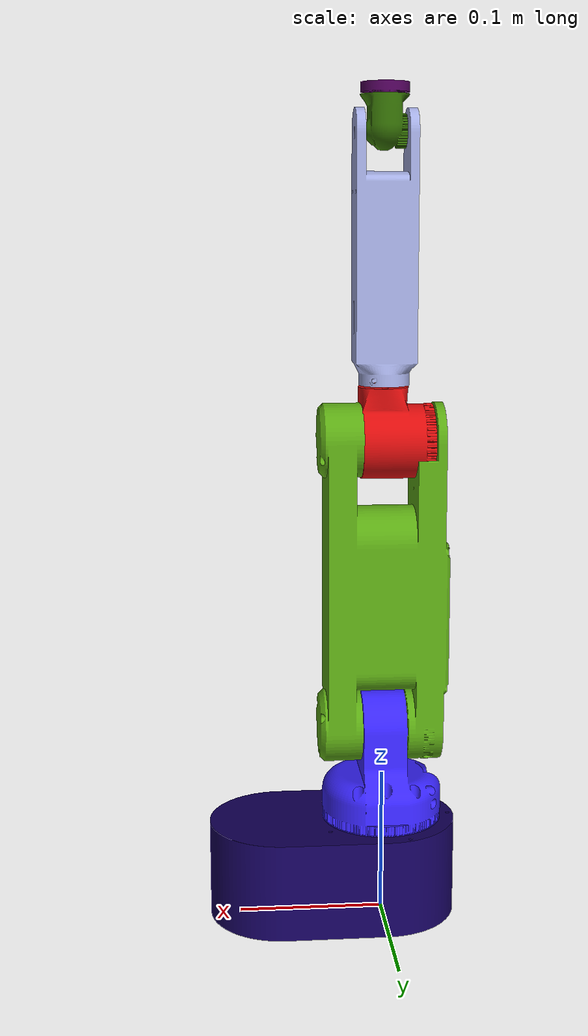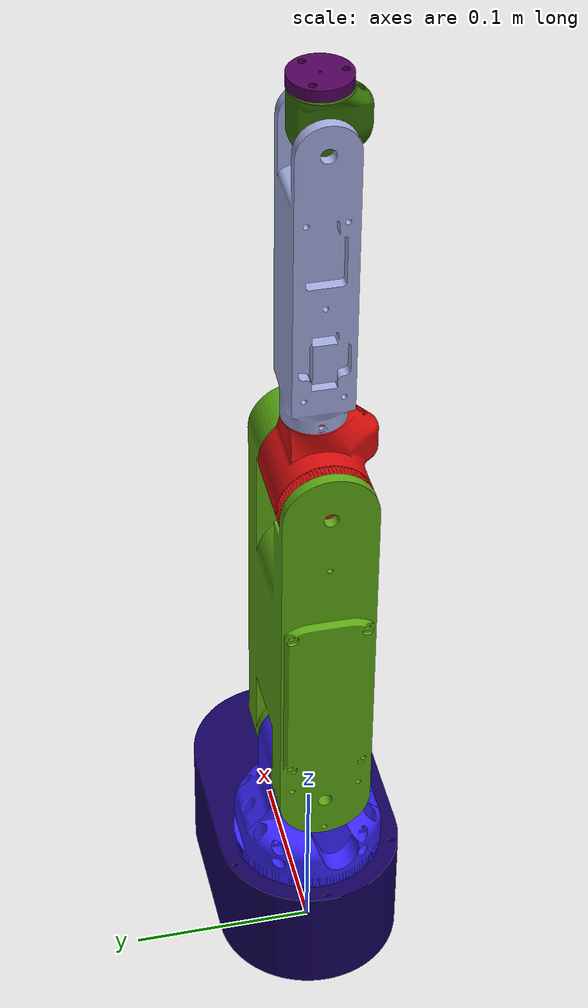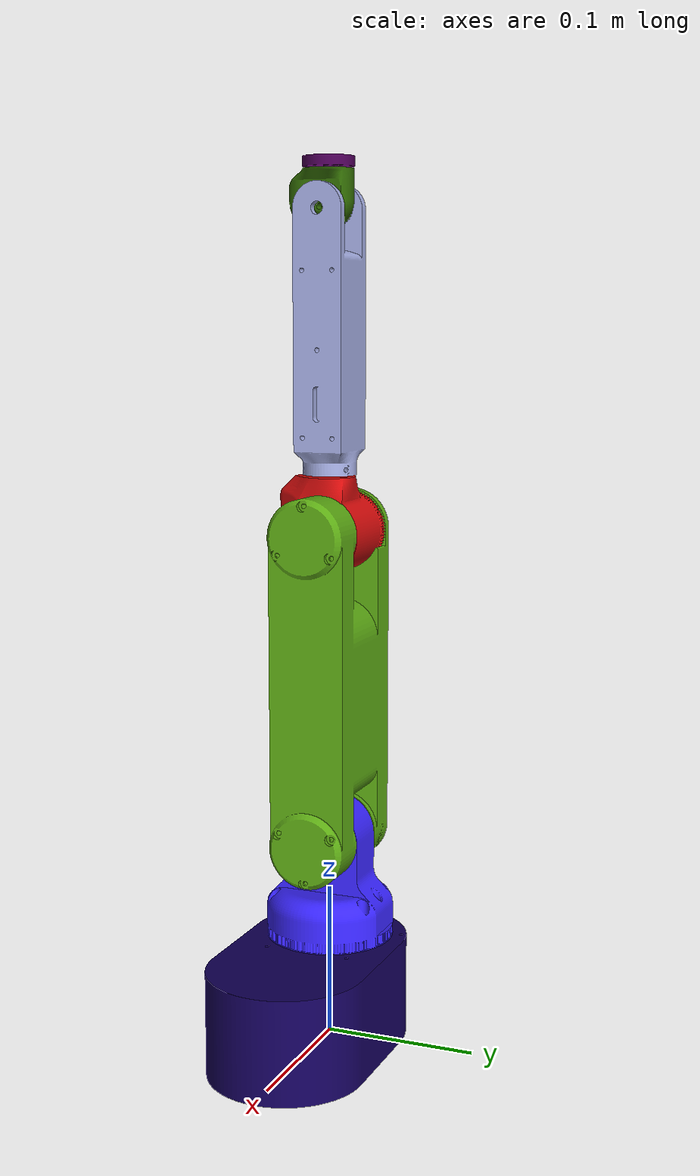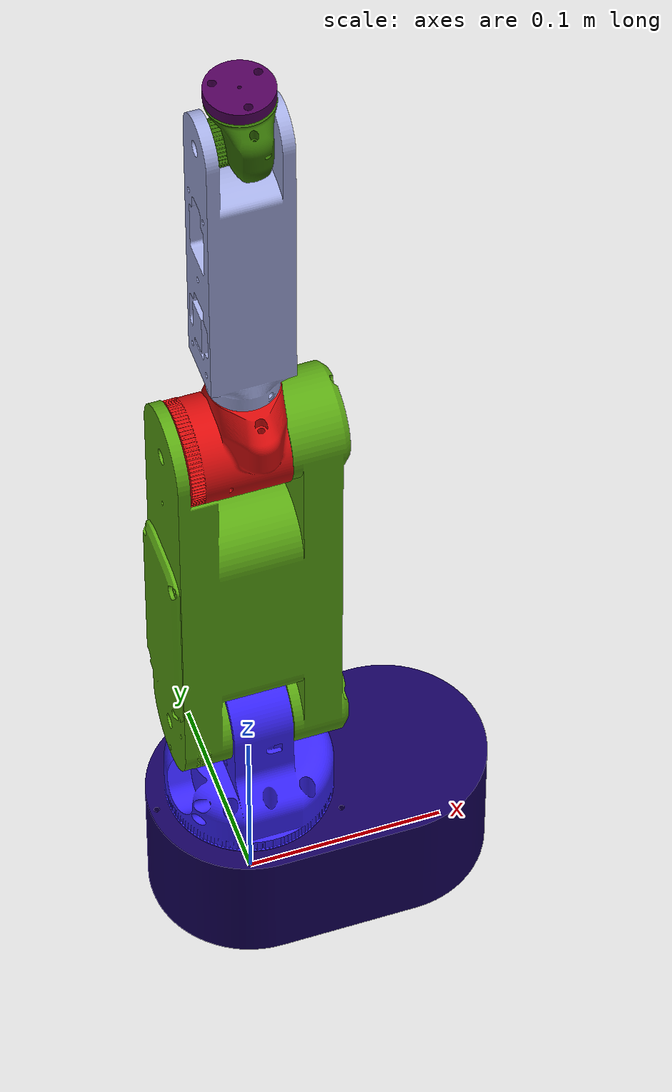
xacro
<?xml version="1.0"?>
<robot name="ers6" xmlns:xacro="http://ros.org/wiki/xacro">

  <!-- Optional properties for mesh scale and material reuse -->
  <xacro:property name="mesh_scale" value="0.001 0.001 0.001"/>

  <!-- Include modular link/joint definitions (could be broken into multiple files later) -->

  <link name="world" />

  <joint name="world_to_base_link" type="fixed">
    <parent link="world" />
    <child link="base_link" />
    <origin xyz="0 0 0" rpy="0 0 0" />
  </joint>

  <!-- === base_link === -->
  <xacro:macro name="link_with_mesh" params="link_name mesh_file origin_xyz origin_rpy color_rgba">
    <link name="${link_name}">
      <visual>
        <origin xyz="${origin_xyz}" rpy="${origin_rpy}" />
        <geometry>
          <mesh filename="${mesh_file}" scale="${mesh_scale}" />
        </geometry>
        <material name="${link_name}-material">
          <color rgba="${color_rgba}" />
        </material>
      </visual>
      <collision>
        <origin xyz="${origin_xyz}" rpy="${origin_rpy}" />
        <geometry>
          <mesh filename="${mesh_file}" scale="${mesh_scale}" />
        </geometry>
      </collision>
      <inertial>
        <origin xyz="${origin_xyz}" rpy="${origin_rpy}" />
        <mass value="1" />
        <inertia ixx="0.4" ixy="0" ixz="0" iyy="0.4" iyz="0" izz="0.4" />
      </inertial>
    </link>
  </xacro:macro>

  <xacro:link_with_mesh
    link_name="base_link"
    mesh_file="package://ers6_description/meshes/Base.stl"
    origin_xyz="0 0 0"
    origin_rpy="0 0 0"
    color_rgba="0.0762 0.0003 0.3613 1"/>

  <joint name="base_link_to_a5" type="revolute">
    <parent link="base_link" />
    <child link="a5" />
    <origin xyz="0.0 0.0005 0.0732" rpy="0 0 0" />
    <axis xyz="0 0 1"/>
    <limit effort="1000.0" lower="-1" upper="1" velocity="0.5"/>
  </joint>

  <xacro:link_with_mesh
    link_name="a5"
    mesh_file="package://ers6_description/meshes/a5.stl"
    origin_xyz="0.0002 0.0 -0.0037"
    origin_rpy="0 0 0"
    color_rgba="0.2232 0.1441 1 1"/>

  <joint name="a5_to_a4" type="revolute">
    <parent link="a5" />
    <child link="a4" />
    <origin xyz="0.1692 0.0 0.0620" rpy="0 0 1.5708" />
    <axis xyz="0.0 -1.0 -0.0018"/>
    <limit effort="1000.0" lower="-1" upper="1" velocity="0.5"/>
  </joint>

  <xacro:link_with_mesh
    link_name="a4"
    mesh_file="package://ers6_description/meshes/a4.stl"
    origin_xyz="0 0 0"
    origin_rpy="0 0 0"
    color_rgba="0.3564 0.6583 0.0742 1"/>

  <joint name="a4_to_a3" type="revolute">
    <parent link="a4" />
    <child link="a3" />
    <origin xyz="0 0.1685 0.20" rpy="0 0 3.141592653589793" />
    <axis xyz="0.0 -1.0 0.0032"/>
    <limit effort="1000.0" lower="-1" upper="1" velocity="0.5"/>
  </joint>

  <xacro:link_with_mesh
    link_name="a3"
    mesh_file="package://ers6_description/meshes/a3.stl"
    origin_xyz="0.0 0.0 0.0372"
    origin_rpy="0 0 0"
    color_rgba="0.855 0.04971 0.0497 1"/>

  <joint name="a3_to_a2" type="revolute">
    <parent link="a3" />
    <child link="a2" />
    <origin xyz="0.0005 -0.0006 0.0331" rpy="0 0 0" />
    <axis xyz="0 0 1"/>
    <limit effort="1000.0" lower="-1" upper="1" velocity="0.5"/>
  </joint>

  <xacro:link_with_mesh
    link_name="a2"
    mesh_file="package://ers6_description/meshes/a2.stl"
    origin_xyz="-0.0159 -0.03442 0"
    origin_rpy="0 0 0"
    color_rgba="0.6376 0.6724 0.8796 1"/>

  <joint name="a2_to_a1" type="revolute">
    <parent link="a2" />
    <child link="a1" />
    <origin xyz="-0.0004 0.0001 0.1682" rpy="0 0 3.141592653589793" />
    <axis xyz="0.0 1.0 0.0041"/>
    <limit effort="1000.0" lower="-1" upper="1" velocity="0.5"/>
  </joint>

  <xacro:link_with_mesh
    link_name="a1"
    mesh_file="package://ers6_description/meshes/a1.stl"
    origin_xyz="-0.0004 -0.0005 0.0243"
    origin_rpy="0 0 0"
    color_rgba="0.1981 0.4287 0.0152 1"/>

  <joint name="a1_to_a0" type="revolute">
    <parent link="a1" />
    <child link="a0" />
    <origin xyz="0.0 -0.0004 0.0279" rpy="0 0 -1.5707963267948961" />
    <axis xyz="0 0 1"/>
    <limit effort="1000.0" lower="-1" upper="1" velocity="0.5"/>
  </joint>

  <xacro:link_with_mesh
    link_name="a0"
    mesh_file="package://ers6_description/meshes/a0.stl"
    origin_xyz="0 0 0"
    origin_rpy="0 0 0"
    color_rgba="0.3095 0.0015 0.3515 1"/>

</robot>
